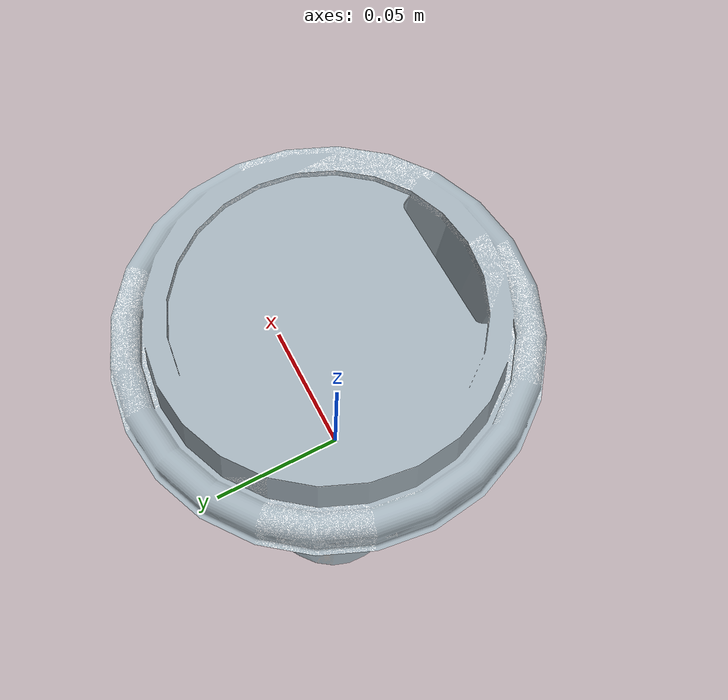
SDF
<?xml version="1.0" ?>
<sdf version="1.5">
  <model name="portable_cup_2">
    <static>false</static>
    <link name="link">
      <inertial>
        <pose>0 0 0 0 0 0</pose>
        <mass>0.1</mass>
        <inertia>
          <ixx>0.0003325</ixx>
          <ixy>0</ixy>
          <ixz>0</ixz>
          <iyy>0.0003325</iyy>
          <iyz>0</iyz>
          <izz>0.00012500000000000003</izz>
        </inertia>
      </inertial>

      <collision name="col_portable_cup_2">
        <pose>0 0 0 0 0 0</pose>
        <geometry>
          <mesh>
            <uri>model://portable_cup_2/meshes/cup_col.stl</uri>
          </mesh>
        </geometry>
        <surface>
          <friction>
            <ode>
              <mu>0.01</mu>
              <mu2>0.01</mu2>
            </ode>
          </friction>
          <contact>
            <ode>
              <kp>10000000.0</kp>
              <kd>10000000.0</kd>
              <min_depth>0.001</min_depth>
              <max_vel>1.1</max_vel>
            </ode>
          </contact>
        </surface>
      </collision>

      <visual name="visual_portable_cup_2">
        <pose>0 0 0 0 0 0</pose>
        <geometry>
          <mesh>
            <uri>model://portable_cup_2/meshes/portable_cup_2.dae</uri>
          </mesh>
        </geometry>
      </visual>
    </link>

  </model>
</sdf>
